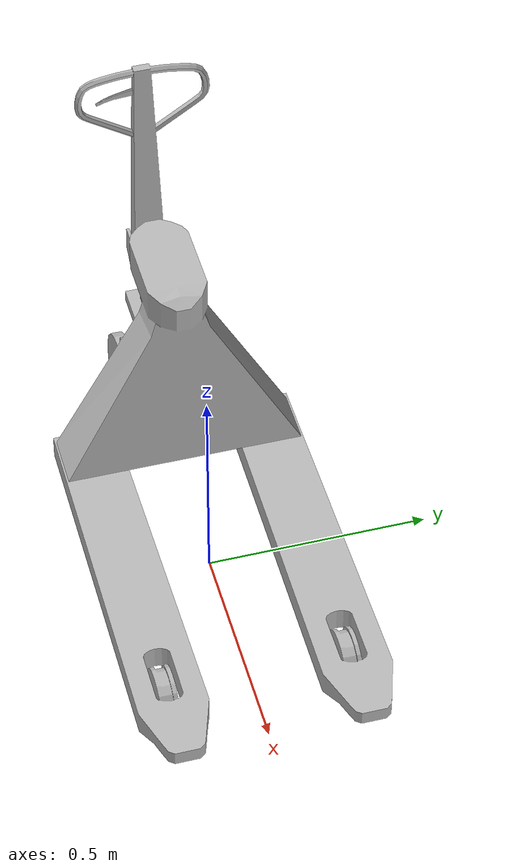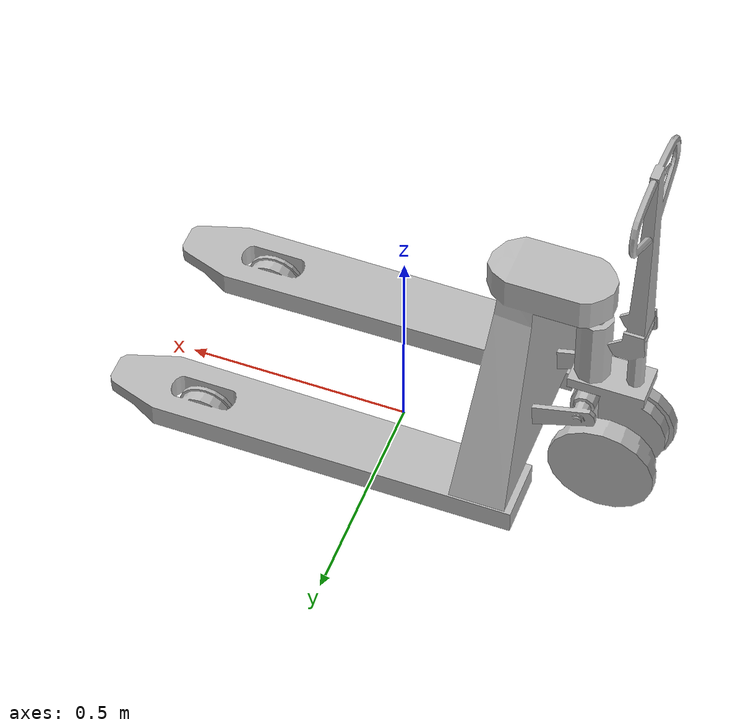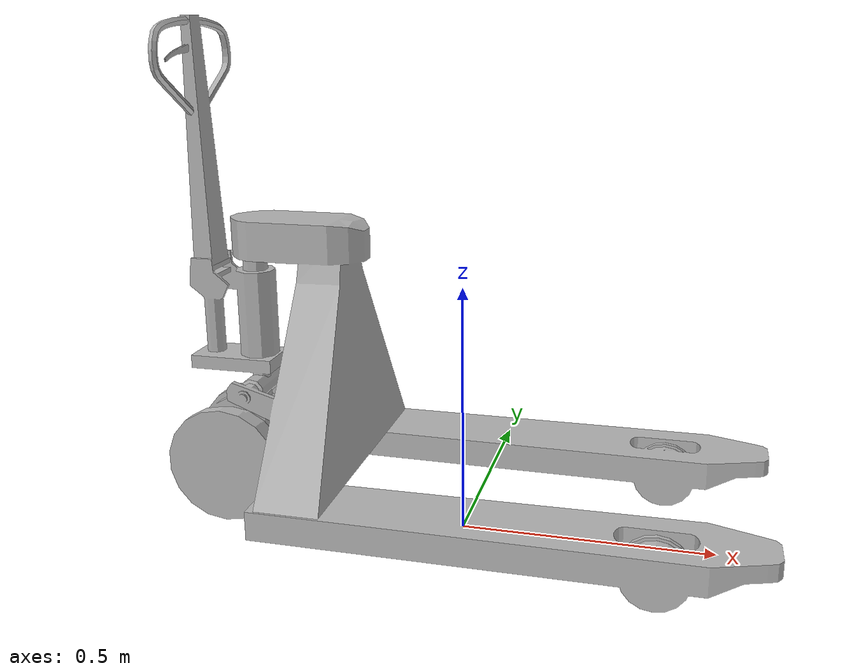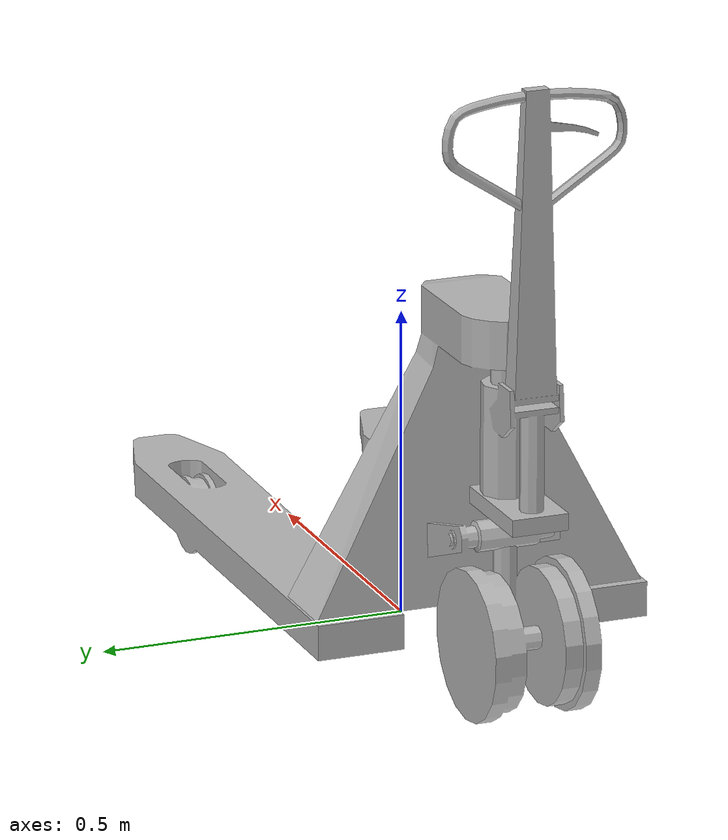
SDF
<?xml version="1.0"?>
<sdf version="1.9">
  <model name="pallet_jack">
    <static>true</static>
    <link name="link">
      <collision name="collision"><pose>0 0 0.5 0 0 0</pose><geometry><box><size>1.19 0.55 1.0</size></box></geometry></collision>
      <!-- AWS RoboMaker Small Warehouse (MIT-0). -->
      <visual name="mesh_0"><geometry><mesh><uri>meshes/pallet_jack_0.obj</uri></mesh></geometry><material><pbr><metal><albedo_map>materials/textures/pallet_jack_0.png</albedo_map></metal></pbr></material></visual>
      <visual name="mesh_1"><geometry><mesh><uri>meshes/pallet_jack_1.obj</uri></mesh></geometry><material><pbr><metal><albedo_map>materials/textures/pallet_jack_1.png</albedo_map></metal></pbr></material></visual>
    </link>
  </model>
</sdf>
